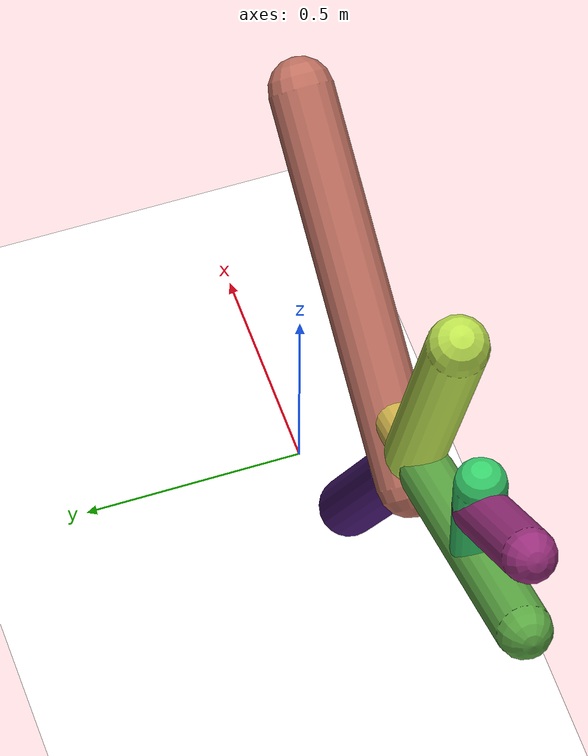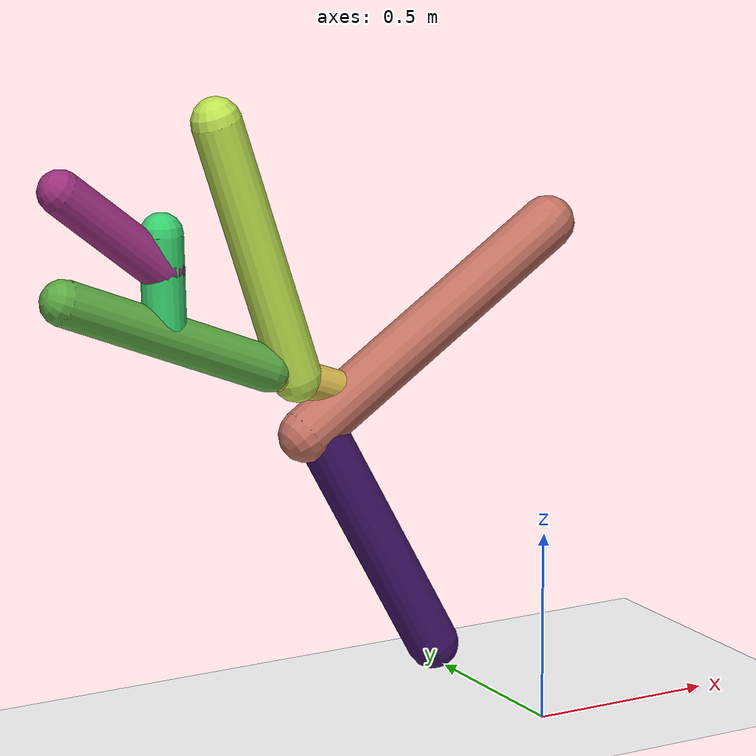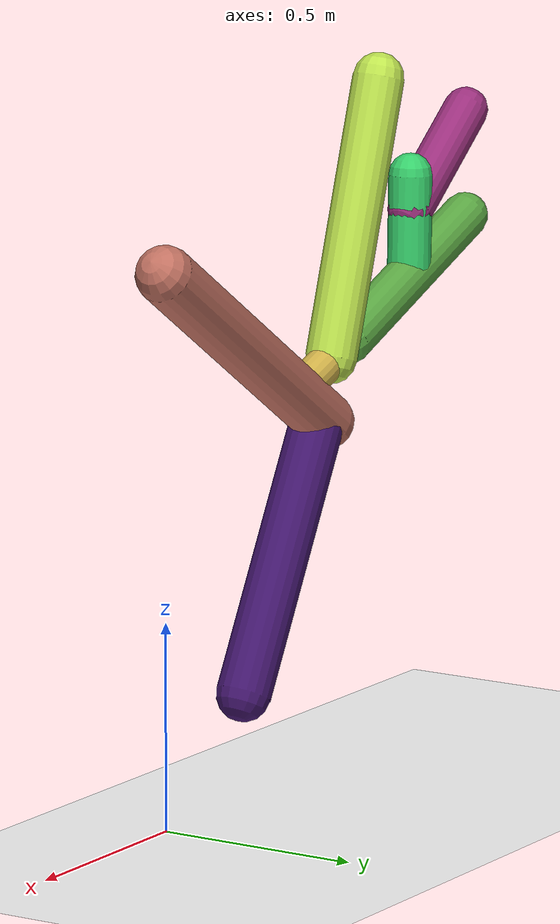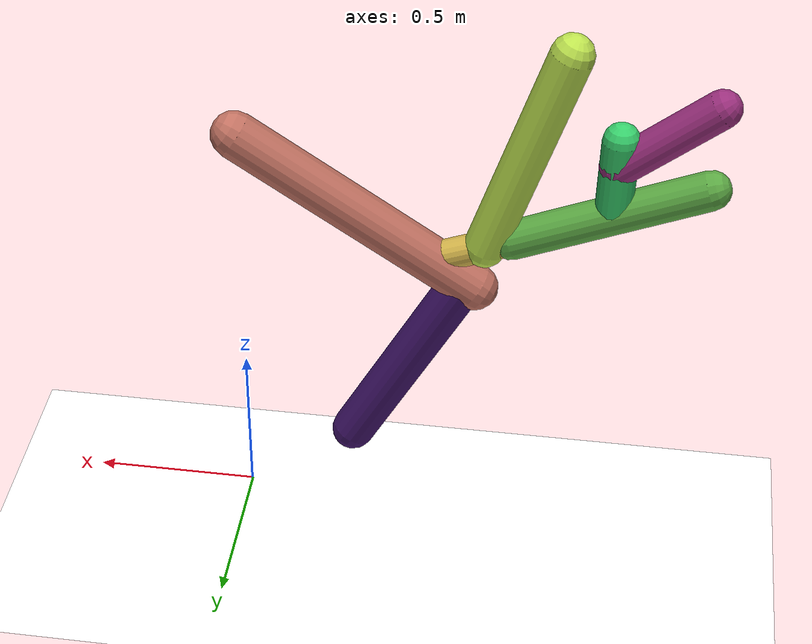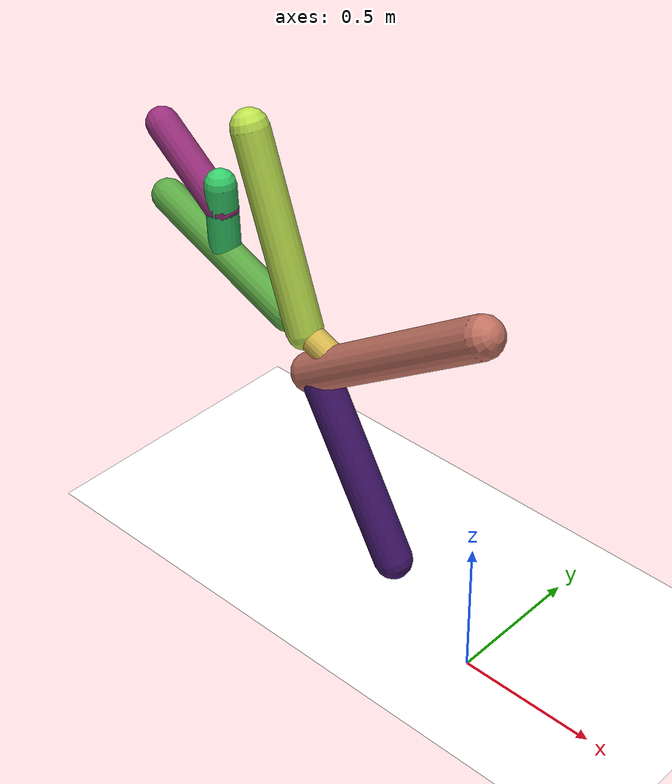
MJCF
<mujoco model="morphology">
    <option timestep="0.01" />
    <default>
        <default class="/" />
        <default class="0/" />
        <default class="0/1/" />
        <default class="0/1/2/" />
        <default class="0/1/2/3/" />
        <default class="0/1/2/3/4/" />
        <default class="0/1/5/" />
        <default class="0/6/" />
    </default>
    <asset>
        <texture name="texplane" type="2d" builtin="checker"
            rgb1="0.10000000000000001 0.20000000000000001 0.29999999999999999"
            rgb2="0.20000000000000001 0.29999999999999999 0.40000000000000002" width="300"
            height="300" />
        <material name="MatPlane" class="/" texture="texplane" texrepeat="20 20" specular="1.0"
            shininess="1.0" reflectance="0.5" />
    </asset>
    <worldbody>
        <light name="//unnamed_light_0" class="/" directional="true" pos="0 0 1.5" dir="0 0 -1.3"
            cutoff="100.0" exponent="1.0" diffuse="1 1 1"
            specular="0.10000000000000001 0.10000000000000001 0.10000000000000001" />
        <geom name="ground" class="/" type="plane" size="15 15 0.5" material="MatPlane"
            rgba="1 1 1 1" />
        <site name="body" class="/"
            size="9.9999999999999995e-07 9.9999999999999995e-07 9.9999999999999995e-07"
            pos="0 0 1.3224655485153198" />
        <body pos="0 0 1.3224655485153198" name="0/">
            <joint name="0/rootx/" class="/" type="slide" axis="1 0 0" stiffness="0.0"
                armature="0.0" damping="0.0" />
            <joint name="0/rootz/" class="/" type="slide" axis="0 0 1" stiffness="0.0"
                armature="0.0" damping="0.0" />
            <joint name="0/rooty/" class="/" type="hinge" axis="0 1 0" stiffness="0.0"
                armature="0.0" damping="0.0" />
            <geom name="0/geom" class="0/" type="capsule" contype="1" conaffinity="1" condim="3"
                size="0.069734411716369599"
                rgba="0.75827197015716929 0.44508715241039709 0.38189726454495598 1"
                friction="0.59999999999999998 0.10000000000000001 0.10000000000000001"
                fromto="0 0 0 -0.69758435008020236 0 -0.46406197004880351" />
            <site name="0/end0" class="0/" size="0.0050000000000000001"
                pos="-0.69758435008020236 0 -0.46406197004880351" />
            <site name="0/attach1" class="0/"
                size="9.9999999999999995e-07 9.9999999999999995e-07 9.9999999999999995e-07"
                pos="-0.56362106660265454 0 -0.37494405156675942" />
            <body pos="-0.56362106660265454 0 -0.37494405156675942" name="0/1/">
                <joint name="0/1/joint/" class="0/" type="hinge" axis="0 1 0" limited="true"
                    stiffness="100.0" range="-40.057832612297872 40.057832612297872" armature="0.2"
                    damping="3.5" />
                <geom name="0/1/geom" class="0/1/" type="capsule" contype="1" conaffinity="1"
                    condim="3" size="0.04635046233790055"
                    rgba="0.82692190843039992 0.70423614496075815 0.2925692602822807 1"
                    friction="0.59999999999999998 0.10000000000000001 0.10000000000000001"
                    fromto="0 0 0 -0.2450126127519423 0 0.093496284033865229" />
                <site name="0/1/end1" class="0/1/" size="0.0050000000000000001"
                    pos="-0.2450126127519423 0 0.093496284033865229" />
                <site name="0/1/attach2" class="0/1/"
                    size="9.9999999999999995e-07 9.9999999999999995e-07 9.9999999999999995e-07"
                    pos="-0.23435196249436452 0 0.089428202912354524" />
                <body pos="-0.23435196249436452 0 0.089428202912354524" name="0/1/2/">
                    <joint name="0/1/2/joint/" class="0/1/" type="hinge" axis="0 1 0" limited="true"
                        stiffness="100.0" range="-65.901720488310389 65.901720488310389"
                        armature="0.2" damping="3.5" />
                    <geom name="0/1/2/geom" class="0/1/2/" type="capsule" contype="1"
                        conaffinity="1" condim="3" size="0.057272004355922897"
                        rgba="0.35699445099504812 0.6564802108216361 0.26267624711880022 1"
                        friction="0.59999999999999998 0.10000000000000001 0.10000000000000001"
                        fromto="0 0 0 -0.54653625988901089 0 0.22689404212198772" />
                    <site name="0/1/2/end2" class="0/1/2/" size="0.0050000000000000001"
                        pos="-0.54653625988901089 0 0.22689404212198772" />
                    <site name="0/1/2/attach3" class="0/1/2/"
                        size="9.9999999999999995e-07 9.9999999999999995e-07 9.9999999999999995e-07"
                        pos="-0.28177275571170191 0 0.11697770888296177" />
                    <body pos="-0.28177275571170191 0 0.11697770888296177" name="0/1/2/3/">
                        <joint name="0/1/2/3/joint/" class="0/1/2/" type="hinge" axis="0 1 0"
                            limited="true" stiffness="100.0"
                            range="-39.807423956348636 39.807423956348636" armature="0.2"
                            damping="3.5" />
                        <geom name="0/1/2/3/geom" class="0/1/2/3/" type="capsule" contype="1"
                            conaffinity="1" condim="3" size="0.053779751250942344"
                            rgba="0.21294876157497511 0.81190659747075333 0.42029374937910291 1"
                            friction="0.59999999999999998 0.10000000000000001 0.10000000000000001"
                            fromto="0 0 0 -0.0051471043785271675 0 0.24790942534151217" />
                        <site name="0/1/2/3/end3" class="0/1/2/3/" size="0.0050000000000000001"
                            pos="-0.0051471043785271675 0 0.24790942534151217" />
                        <site name="0/1/2/3/attach4" class="0/1/2/3/"
                            size="9.9999999999999995e-07 9.9999999999999995e-07 9.9999999999999995e-07"
                            pos="-0.0033544946371417074 0 0.16156867563718391" />
                        <body pos="-0.0033544946371417074 0 0.16156867563718391" name="0/1/2/3/4/">
                            <joint name="0/1/2/3/4/joint/" class="0/1/2/3/" type="hinge"
                                axis="0 1 0" limited="true" stiffness="100.0"
                                range="-58.056312050697564 58.056312050697564" armature="0.2"
                                damping="3.5" />
                            <geom name="0/1/2/3/4/geom" class="0/1/2/3/4/" type="capsule"
                                contype="1" conaffinity="1" condim="3" size="0.055170735583901342"
                                rgba="0.60070192631263775 0.18234215374832996 0.48580419418923793 1"
                                friction="0.59999999999999998 0.10000000000000001 0.10000000000000001"
                                fromto="0 0 0 -0.26226195079194581 0 0.2126847143501136" />
                            <site name="0/1/2/3/4/end4" class="0/1/2/3/4/"
                                size="0.0050000000000000001"
                                pos="-0.26226195079194581 0 0.2126847143501136" />
                        </body>
                    </body>
                </body>
                <site name="0/1/attach5" class="0/1/"
                    size="9.9999999999999995e-07 9.9999999999999995e-07 9.9999999999999995e-07"
                    pos="-0.15903331726908185 0 0.060686770510429602" />
                <body pos="-0.15903331726908185 0 0.060686770510429602" name="0/1/5/">
                    <joint name="0/1/5/joint/" class="0/1/" type="hinge" axis="0 1 0" limited="true"
                        stiffness="100.0" range="-30.118394442561115 30.118394442561115"
                        armature="0.2" damping="3.5" />
                    <geom name="0/1/5/geom" class="0/1/5/" type="capsule" contype="1"
                        conaffinity="1" condim="3" size="0.062863075506739016"
                        rgba="0.74162308919918329 0.88625994684627507 0.30584593497885282 1"
                        friction="0.59999999999999998 0.10000000000000001 0.10000000000000001"
                        fromto="0 0 0 -0.21172547657962282 0 0.6500347799010846" />
                    <site name="0/1/5/end5" class="0/1/5/" size="0.0050000000000000001"
                        pos="-0.21172547657962282 0 0.6500347799010846" />
                </body>
            </body>
            <site name="0/attach6" class="0/"
                size="9.9999999999999995e-07 9.9999999999999995e-07 9.9999999999999995e-07"
                pos="-0.66846287770455837 0 -0.44468916181448825" />
            <body pos="-0.66846287770455837 0 -0.44468916181448825" name="0/6/">
                <joint name="0/6/joint/" class="0/" type="hinge" axis="0 1 0" limited="true"
                    stiffness="100.0" range="-64.093901439645748 64.093901439645748" armature="0.2"
                    damping="3.5" />
                <geom name="0/6/geom" class="0/6/" type="capsule" contype="1" conaffinity="1"
                    condim="3" size="0.066108985129796821"
                    rgba="0.26170124755691448 0.086485086573254932 0.43092152231727932 1"
                    friction="0.59999999999999998 0.10000000000000001 0.10000000000000001"
                    fromto="0 0 0 0.33544651456666341 0 -0.61777643112198577" />
                <site name="0/6/end6" class="0/6/" size="0.0050000000000000001"
                    pos="0.33544651456666341 0 -0.61777643112198577" />
            </body>
            <camera name="0/side" class="0/" mode="trackcom"
                pos="0.40000000000000002 -4 0.20000000000000001"
                quat="0.70699999999999996 0.70699999999999996 0 0" />
        </body>
    </worldbody>
    <actuator>
        <motor name="0/1/motor" class="0/1/" ctrllimited="true" ctrlrange="-1 1" gear="68"
            joint="0/1/joint/" />
        <motor name="0/1/2/motor" class="0/1/2/" ctrllimited="true" ctrlrange="-1 1" gear="67"
            joint="0/1/2/joint/" />
        <motor name="0/1/2/3/motor" class="0/1/2/3/" ctrllimited="true" ctrlrange="-1 1" gear="84"
            joint="0/1/2/3/joint/" />
        <motor name="0/1/2/3/4/motor" class="0/1/2/3/4/" ctrllimited="true" ctrlrange="-1 1"
            gear="74" joint="0/1/2/3/4/joint/" />
        <motor name="0/1/5/motor" class="0/1/5/" ctrllimited="true" ctrlrange="-1 1" gear="88"
            joint="0/1/5/joint/" />
        <motor name="0/6/motor" class="0/6/" ctrllimited="true" ctrlrange="-1 1" gear="59"
            joint="0/6/joint/" />
    </actuator>
    <sensor>
        <subtreelinvel name="velocity" body="0/" />
    </sensor>
</mujoco>
